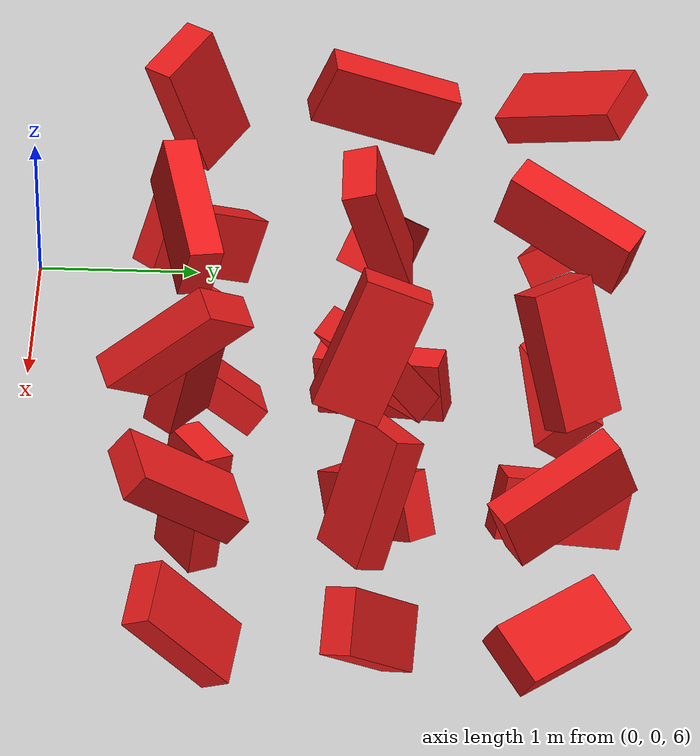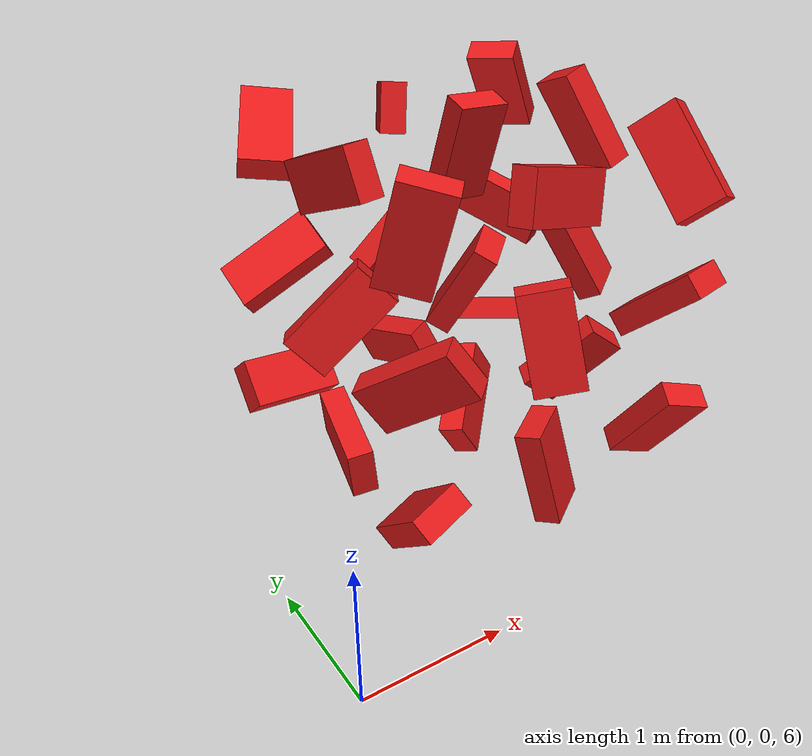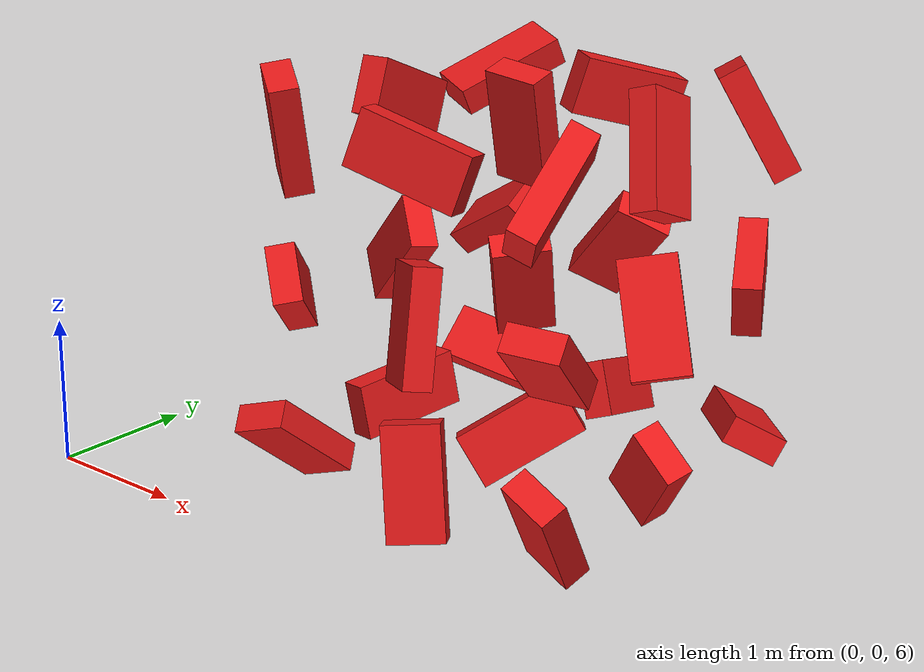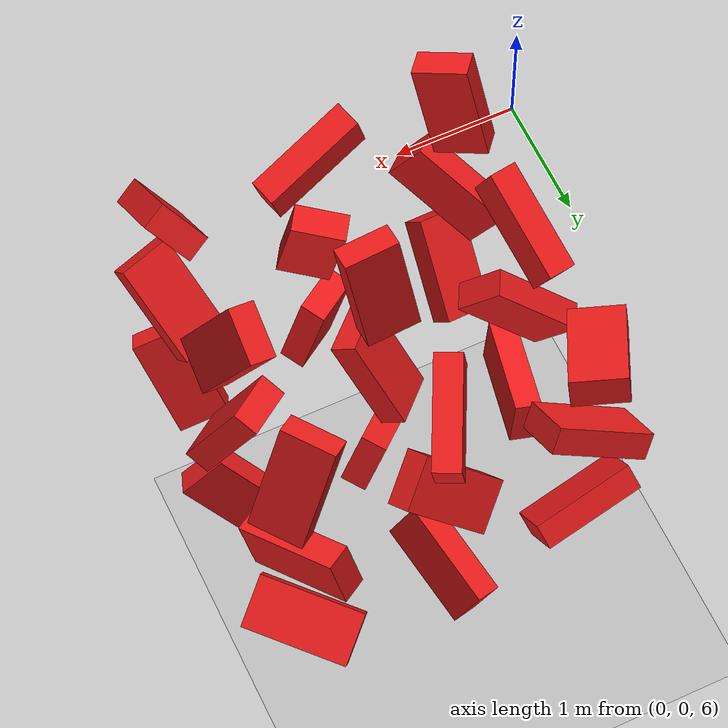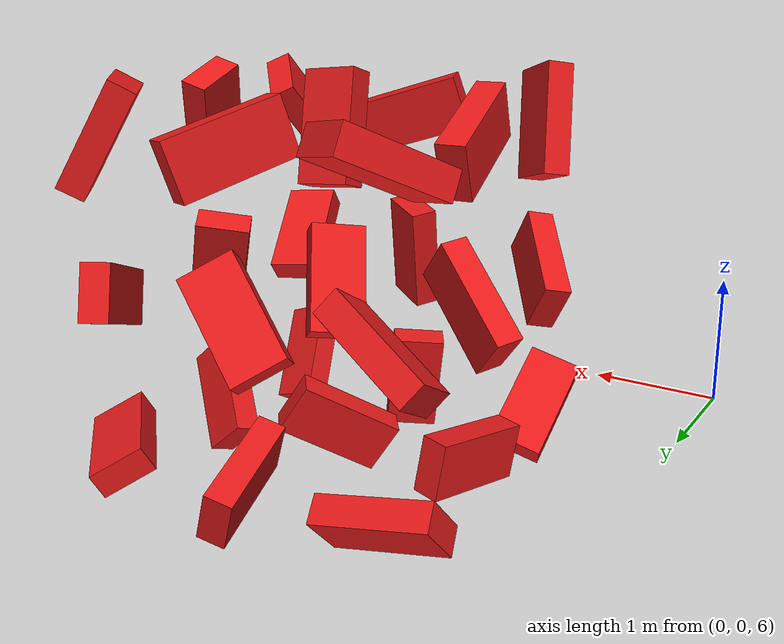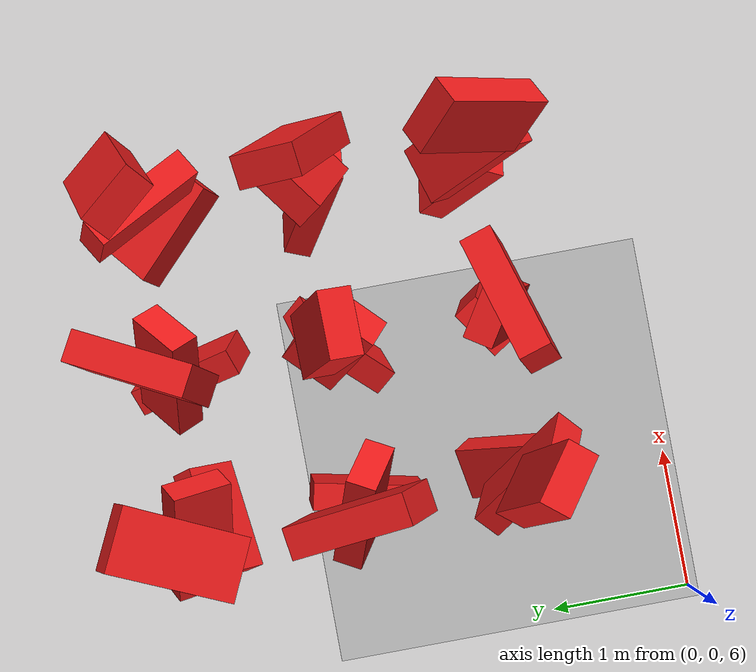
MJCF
<mujoco model="Humanoid and 100 objects">
    <compiler angle="degree"/>

    <option timestep="0.01" iterations="50" solver="PGS" jacobian="sparse" cone="elliptic" tolerance="1e-10"/>

    <size njmax="5000" nconmax="2000" nstack="1000000000"/>

    <default>
        <geom solimp=".9 .9 .01"/>

        <default class="object5">
			<geom type="box" material="geom" rgba=".9 .1 .1 1" size="0.400000 0.200000 0.100000"/>
        </default>
    </default>

    <asset>
        <texture type="skybox" builtin="gradient" width="128" height="128" rgb1=".4 .6 .8" rgb2="0 0 0"/>
        <texture name="texgeom" type="cube" builtin="flat" mark="cross" width="128" height="128"
            rgb1="0.6 0.6 0.6" rgb2="0.6 0.6 0.6" markrgb="1 1 1"/>
        <texture name="texplane" type="2d" builtin="checker" rgb1=".4 .4 .4" rgb2=".6 .6 .6"
            width="512" height="512"/>
        <material name='geom' texture="texgeom" texuniform="true"/>
        <material name='MatPlane' reflectance='0.3' texture="texplane" texrepeat="1 1" texuniform="true"/>
    </asset>

    <visual>
        <quality shadowsize="4096" offsamples="8"/>
        <map znear="0.1" force="0.05"/>
    </visual>

    <statistic extent="4"/>

    <worldbody>
        <light directional="true" diffuse=".8 .8 .8" pos="0 0 10" dir="0 0 -10"/>

        <geom pos="0 0 0" type="plane" size="3 3 .5" rgba=".7 .7 .7 1" material="MatPlane"/>
		<body pos="1.100863 1.100354 6.100396" quat="-0.675125 0.117906 0.360942 0.632476"> <freejoint/> <geom class="object5"/> </body>
		<body pos="1.100498 1.100342 7.200255" quat="0.491755 0.078182 0.639276 0.585996"> <freejoint/> <geom class="object5"/> </body>
		<body pos="1.100412 1.100075 8.300972" quat="-0.205125 -0.635067 -0.408318 0.622808"> <freejoint/> <geom class="object5"/> </body>
		<body pos="1.100694 2.200240 6.100875" quat="0.552658 0.547957 0.381968 0.498411"> <freejoint/> <geom class="object5"/> </body>
		<body pos="1.100004 2.200835 7.200622" quat="-0.392845 0.110738 -0.742861 -0.530629"> <freejoint/> <geom class="object5"/> </body>
		<body pos="1.100536 2.200599 8.300886" quat="-0.432887 0.613598 -0.340835 0.565630"> <freejoint/> <geom class="object5"/> </body>
		<body pos="1.100167 3.300664 6.100335" quat="0.032397 -0.095593 0.394052 -0.913529"> <freejoint/> <geom class="object5"/> </body>
		<body pos="1.100544 3.300132 7.200418" quat="0.276515 0.023117 0.930096 0.240679"> <freejoint/> <geom class="object5"/> </body>
		<body pos="1.100995 3.300960 8.300628" quat="-0.517945 -0.137713 -0.165993 0.827777"> <freejoint/> <geom class="object5"/> </body>
		<body pos="2.200127 1.100985 6.100224" quat="0.339438 0.542856 -0.317999 0.699261"> <freejoint/> <geom class="object5"/> </body>
		<body pos="2.200390 1.100612 7.200779" quat="-0.253825 0.630394 0.418700 0.602384"> <freejoint/> <geom class="object5"/> </body>
		<body pos="2.200422 1.100370 8.300653" quat="0.756119 0.624785 0.194737 0.002336"> <freejoint/> <geom class="object5"/> </body>
		<body pos="2.200417 2.200490 6.100922" quat="0.048539 0.449304 -0.636311 -0.625203"> <freejoint/> <geom class="object5"/> </body>
		<body pos="2.200271 2.200947 7.200976" quat="0.478841 0.359980 0.787601 -0.144259"> <freejoint/> <geom class="object5"/> </body>
		<body pos="2.200260 2.200427 8.300853" quat="0.447560 0.584353 -0.539721 0.408563"> <freejoint/> <geom class="object5"/> </body>
		<body pos="2.200306 3.300201 6.100420" quat="-0.568099 -0.272368 -0.517905 -0.578666"> <freejoint/> <geom class="object5"/> </body>
		<body pos="2.200307 3.300830 7.200011" quat="0.830359 -0.374552 -0.329968 -0.247663"> <freejoint/> <geom class="object5"/> </body>
		<body pos="2.200670 3.300139 8.300392" quat="-0.261388 0.467504 -0.562896 0.629496"> <freejoint/> <geom class="object5"/> </body>
		<body pos="3.300412 1.100778 6.100434" quat="-0.458090 -0.619800 0.604019 -0.202884"> <freejoint/> <geom class="object5"/> </body>
		<body pos="3.300879 1.100525 7.200421" quat="0.759271 -0.231668 -0.260928 -0.549322"> <freejoint/> <geom class="object5"/> </body>
		<body pos="3.300886 1.100398 8.300142" quat="0.704803 -0.090760 -0.537306 0.454222"> <freejoint/> <geom class="object5"/> </body>
		<body pos="3.300440 2.200026 6.100322" quat="-0.139790 -0.448622 -0.670111 0.574586"> <freejoint/> <geom class="object5"/> </body>
		<body pos="3.300548 2.200310 7.200895" quat="-0.342282 -0.437576 0.293693 -0.777891"> <freejoint/> <geom class="object5"/> </body>
		<body pos="3.300327 2.200177 8.300458" quat="0.573609 -0.123070 -0.794694 0.155847"> <freejoint/> <geom class="object5"/> </body>
		<body pos="3.300554 3.300036 6.100165" quat="0.888511 -0.247791 0.039281 -0.384194"> <freejoint/> <geom class="object5"/> </body>
		<body pos="3.300533 3.300682 7.200331" quat="-0.441718 0.245472 0.666871 -0.547642"> <freejoint/> <geom class="object5"/> </body>
		<body pos="3.300307 3.300744 8.300598" quat="-0.819987 0.206776 -0.463424 -0.264771"> <freejoint/> <geom class="object5"/> </body>

    </worldbody>
</mujoco>
